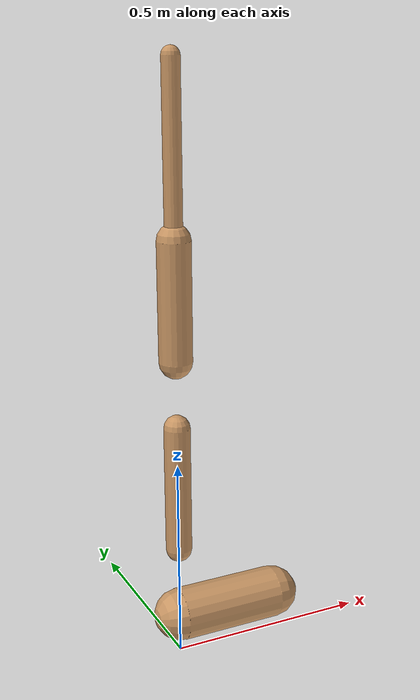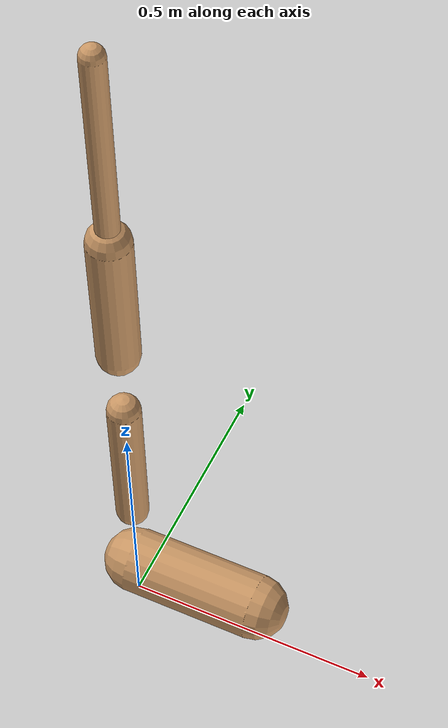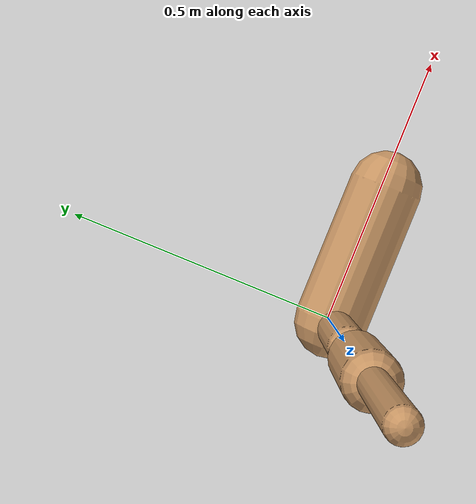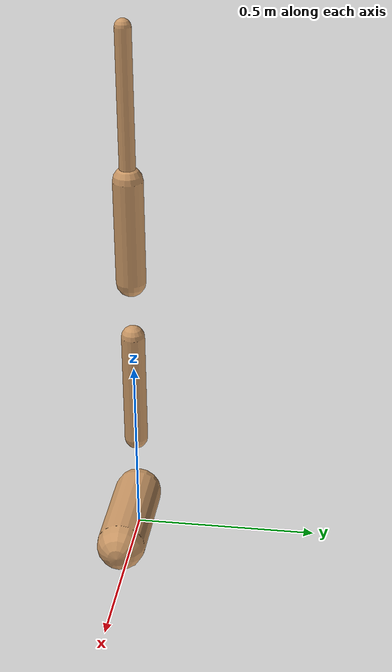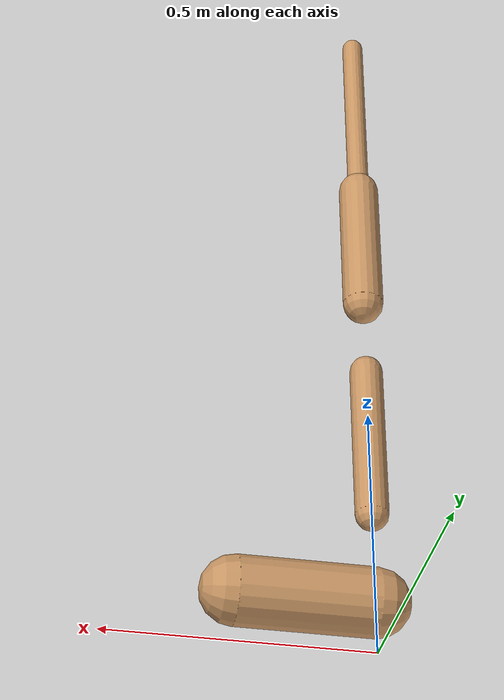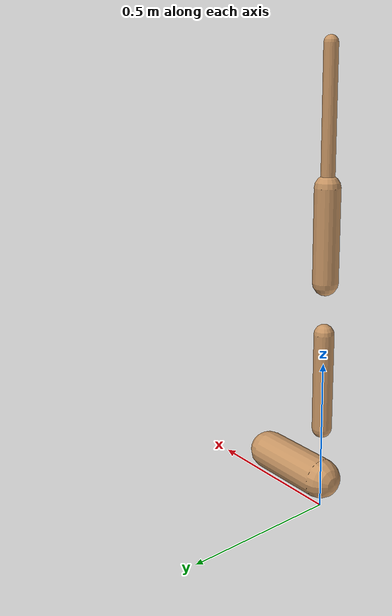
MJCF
<mujoco model="walker2d">
  <compiler angle="degree" coordinate="global" inertiafromgeom="true" />
  <default>
    <joint armature="0.01" damping=".1" limited="true" />
    <geom conaffinity="0" condim="3" contype="1" density="1000" friction="0.8 .1 .1" rgba="0.8 0.6 .4 1" />
  </default>
  <option integrator="RK4" timestep="0.002" />
  <worldbody>

    <body name="torso" pos="0 0 -0.34786212710692693">
      <joint armature="0" axis="1 0 0" damping="0" limited="false" name="ignorex" pos="0 0 0" stiffness="0" type="slide" />
      <joint armature="0" axis="0 0 1" damping="0" limited="false" name="ignorez" pos="0 0 0" ref="1.25" stiffness="0" type="slide" />
      <joint armature="0" axis="0 1 0" damping="0" limited="false" name="ignorey" pos="0 0 0" stiffness="0" type="hinge" />
      <geom fromto="0 0 1.45 0 0 1.05" name="torso_geom" size="0.021410255826293995" type="capsule" />
      <body name="thigh">
        <joint axis="0 -1 0" name="thigh_joint" pos="0 0 1.05" range="-150 0" type="hinge" />
        <geom fromto="0.0 0.0 1.05 0.0 0.0 0.7647767970506496" name="thigh_geom" size="0.03999873132062945" type="capsule" />
        <body name="leg" pos="0.0 0.0 0.16477679705064963">
          <joint axis="0 -1 0" name="leg_joint" pos="0 0 0.6" range="-150 0" type="hinge" />
          <geom fromto="0.0 0.0 0.6 0.0 0.0 0.28308533005627734" name="leg_geom" size="0.03199898505650355" type="capsule" />
          <body name="foot" pos="0.0 0.0 0.18308533005627733">
            <joint axis="0 -1 0" name="foot_joint" pos="0 0 0.1" range="-45 45" type="hinge" />
            <geom fromto="-0.0 0.0 0.09999999999999999 0.258277295416776 0.0 0.09999999999999999" name="foot_geom" size="0.06506966085024152" type="capsule" />
          </body>
        </body>
      </body>

      <body name="thigh_left">
        <joint axis="0 -1 0" name="thigh_left_joint" pos="0 0 1.05" range="-150 0" type="hinge" />
        <geom fromto="0.0 0.0 1.05 0.0 0.0 0.7647767970506496" name="thigh_left_geom" rgba=".7 .3 .6 1" size="0.03999873132062945" type="capsule" />
        <body name="leg_left" pos="0.0 0.0 0.16477679705064963">
          <joint axis="0 -1 0" name="leg_left_joint" pos="0 0 0.6" range="-150 0" type="hinge" />
          <geom fromto="0.0 0.0 0.6 0.0 0.0 0.28308533005627734" name="leg_left_geom" rgba=".7 .3 .6 1" size="0.03199898505650355" type="capsule" />
          <body name="foot_left" pos="0.0 0.0 0.18308533005627733">
            <joint axis="0 -1 0" name="foot_left_joint" pos="0 0 0.1" range="-45 45" type="hinge" />
            <geom fromto="-0.0 0.0 0.09999999999999999 0.258277295416776 0.0 0.09999999999999999" name="foot_left_geom" rgba=".7 .3 .6 1" size="0.06506966085024152" type="capsule" />
          </body>
        </body>
      </body>
    </body>
  </worldbody>
  <actuator>

    <motor ctrllimited="true" ctrlrange="-1.0 1.0" gear="100" joint="thigh_joint" />
    <motor ctrllimited="true" ctrlrange="-1.0 1.0" gear="100" joint="leg_joint" />
    <motor ctrllimited="true" ctrlrange="-1.0 1.0" gear="100" joint="foot_joint" />
    <motor ctrllimited="true" ctrlrange="-1.0 1.0" gear="100" joint="thigh_left_joint" />
    <motor ctrllimited="true" ctrlrange="-1.0 1.0" gear="100" joint="leg_left_joint" />
    <motor ctrllimited="true" ctrlrange="-1.0 1.0" gear="100" joint="foot_left_joint" />

  </actuator>
</mujoco>
